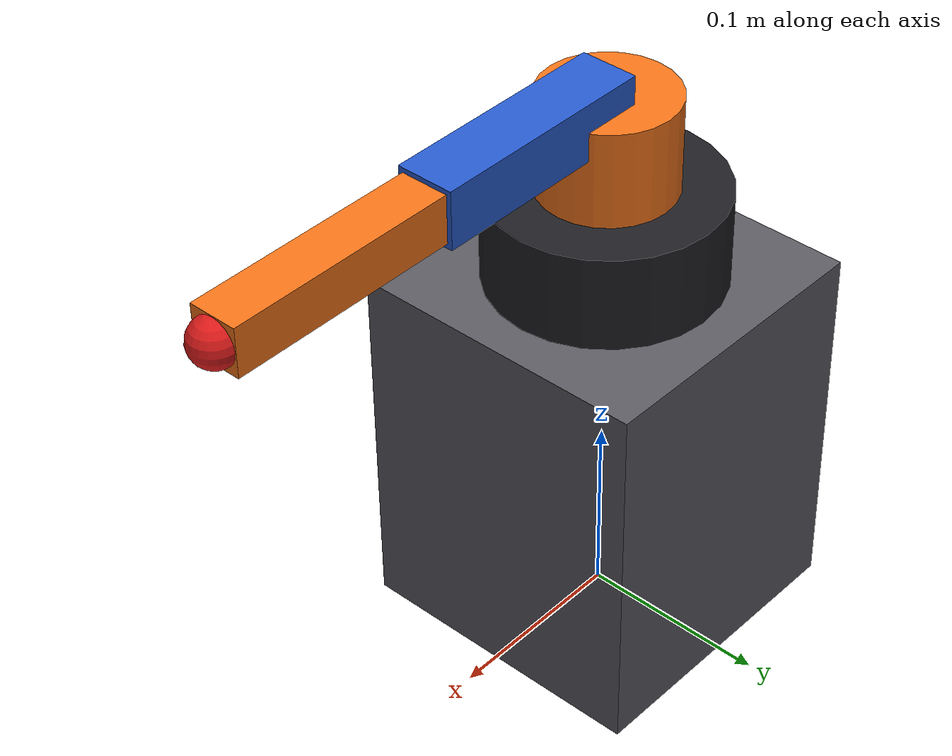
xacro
<?xml version="1.0"?>
<robot name="arm3" xmlns:xacro="http://www.ros.org/wiki/xacro">

  <xacro:arg name="sim_mode" default="gazebo"/>
  <xacro:arg name="control_mode" default="position"/>
  <xacro:property name="sim_mode" value="$(arg sim_mode)"/>
  <xacro:property name="control_mode" value="$(arg control_mode)"/>

  <!-- ===== Геометрические параметры (м) — те же, что в mum_labs/arm3_kinematics.py ===== -->
  <xacro:property name="PI" value="3.141592653589793"/>
  <xacro:property name="H_PED" value="0.20"/>   <!-- высота подставки -->
  <xacro:property name="H_BASE" value="0.05"/>  <!-- высота корпуса основания (до оси q1) -->
  <xacro:property name="H_COL" value="0.05"/>   <!-- высота поворотной колонны (до оси q2) -->
  <xacro:property name="A2" value="0.12"/>      <!-- длина плеча -->
  <xacro:property name="A3" value="0.12"/>      <!-- длина предплечья -->
  <!-- D1 = H_BASE + H_COL = 0.10 м -->

  <!-- ===== Массы (кг) ===== -->
  <xacro:property name="M_BASE" value="0.50"/>
  <xacro:property name="M_L1" value="0.10"/>
  <xacro:property name="M_L2" value="0.12"/>
  <xacro:property name="M_L3" value="0.08"/>

  <!-- ===== Ограничения сервоприводов ===== -->
  <xacro:property name="EFFORT" value="1.5"/>
  <xacro:property name="VEL" value="3.0"/>      <!-- рад/с -->
  <xacro:property name="DAMP" value="0.05"/>    <!-- вязкое трение в редукторе сервопривода, Н·м·с/рад -->

  <!-- ===== Материалы ===== -->
  <material name="grey"><color rgba="0.35 0.35 0.38 1"/></material>
  <material name="dark"><color rgba="0.12 0.12 0.14 1"/></material>
  <material name="orange"><color rgba="0.95 0.45 0.10 1"/></material>
  <material name="blue"><color rgba="0.15 0.35 0.80 1"/></material>
  <material name="red"><color rgba="0.85 0.10 0.10 1"/></material>

  <!-- ===== Макросы инерции ===== -->
  <xacro:macro name="box_inertia" params="m x y z ox oy oz">
    <inertial>
      <origin xyz="${ox} ${oy} ${oz}" rpy="0 0 0"/>
      <mass value="${m}"/>
      <inertia ixx="${m*(y*y+z*z)/12}" ixy="0" ixz="0"
               iyy="${m*(x*x+z*z)/12}" iyz="0"
               izz="${m*(x*x+y*y)/12}"/>
    </inertial>
  </xacro:macro>
  <xacro:macro name="cyl_inertia" params="m r h oz">
    <inertial>
      <origin xyz="0 0 ${oz}" rpy="0 0 0"/>
      <mass value="${m}"/>
      <inertia ixx="${m*(3*r*r+h*h)/12}" ixy="0" ixz="0"
               iyy="${m*(3*r*r+h*h)/12}" iyz="0"
               izz="${m*r*r/2}"/>
    </inertial>
  </xacro:macro>

  <!-- ===== Звенья ===== -->
  <link name="world"/>

  <joint name="world_to_pedestal" type="fixed">
    <parent link="world"/>
    <child link="pedestal"/>
    <origin xyz="0 0 0" rpy="0 0 0"/>
  </joint>

  <link name="pedestal">
    <visual>
      <origin xyz="0 0 ${H_PED/2}"/>
      <geometry><box size="0.16 0.16 ${H_PED}"/></geometry>
      <material name="grey"/>
    </visual>
    <collision>
      <origin xyz="0 0 ${H_PED/2}"/>
      <geometry><box size="0.16 0.16 ${H_PED}"/></geometry>
    </collision>
    <xacro:box_inertia m="2.0" x="0.16" y="0.16" z="${H_PED}" ox="0" oy="0" oz="${H_PED/2}"/>
  </link>

  <joint name="pedestal_to_base" type="fixed">
    <parent link="pedestal"/>
    <child link="base_link"/>
    <origin xyz="0 0 ${H_PED}" rpy="0 0 0"/>
  </joint>

  <!-- base_link = система координат 0 (ось z0 — ось первого сервопривода) -->
  <link name="base_link">
    <visual>
      <origin xyz="0 0 ${H_BASE/2}"/>
      <geometry><cylinder radius="0.06" length="${H_BASE}"/></geometry>
      <material name="dark"/>
    </visual>
    <collision>
      <origin xyz="0 0 ${H_BASE/2}"/>
      <geometry><cylinder radius="0.06" length="${H_BASE}"/></geometry>
    </collision>
    <xacro:cyl_inertia m="${M_BASE}" r="0.06" h="${H_BASE}" oz="${H_BASE/2}"/>
  </link>

  <!-- Сервопривод 1: поворот вокруг z0 -->
  <joint name="joint1" type="revolute">
    <parent link="base_link"/>
    <child link="link1"/>
    <origin xyz="0 0 ${H_BASE}" rpy="0 0 0"/>
    <axis xyz="0 0 1"/>
    <limit lower="${-PI/2}" upper="${PI/2}" effort="${EFFORT}" velocity="${VEL}"/>
    <dynamics damping="${DAMP}" friction="0.0"/>
  </joint>

  <link name="link1">
    <visual>
      <origin xyz="0 0 ${H_COL/2}"/>
      <geometry><cylinder radius="0.035" length="${H_COL}"/></geometry>
      <material name="orange"/>
    </visual>
    <collision>
      <origin xyz="0 0 ${H_COL/2}"/>
      <geometry><cylinder radius="0.035" length="${H_COL}"/></geometry>
    </collision>
    <xacro:cyl_inertia m="${M_L1}" r="0.035" h="${H_COL}" oz="${H_COL/2}"/>
  </link>

  <!-- Сервопривод 2: плечо. Ось (0,-1,0): положительный угол поднимает звено вверх
       (так ось совпадает с осью z1 таблицы ДХ при alpha1 = +pi/2). -->
  <joint name="joint2" type="revolute">
    <parent link="link1"/>
    <child link="link2"/>
    <origin xyz="0 0 ${H_COL}" rpy="0 0 0"/>
    <axis xyz="0 -1 0"/>
    <limit lower="-0.3" upper="2.8" effort="${EFFORT}" velocity="${VEL}"/>
    <dynamics damping="${DAMP}" friction="0.0"/>
  </joint>

  <link name="link2">
    <visual>
      <origin xyz="${A2/2} 0 0"/>
      <geometry><box size="${A2} 0.03 0.03"/></geometry>
      <material name="blue"/>
    </visual>
    <collision>
      <origin xyz="${A2/2} 0 0"/>
      <geometry><box size="${A2} 0.03 0.03"/></geometry>
    </collision>
    <xacro:box_inertia m="${M_L2}" x="${A2}" y="0.03" z="0.03" ox="${A2/2}" oy="0" oz="0"/>
  </link>

  <!-- Сервопривод 3: локоть -->
  <joint name="joint3" type="revolute">
    <parent link="link2"/>
    <child link="link3"/>
    <origin xyz="${A2} 0 0" rpy="0 0 0"/>
    <axis xyz="0 -1 0"/>
    <limit lower="-2.5" upper="2.5" effort="${EFFORT}" velocity="${VEL}"/>
    <dynamics damping="${DAMP}" friction="0.0"/>
  </joint>

  <link name="link3">
    <visual>
      <origin xyz="${A3/2} 0 0"/>
      <geometry><box size="${A3} 0.025 0.025"/></geometry>
      <material name="orange"/>
    </visual>
    <collision>
      <origin xyz="${A3/2} 0 0"/>
      <geometry><box size="${A3} 0.025 0.025"/></geometry>
    </collision>
    <xacro:box_inertia m="${M_L3}" x="${A3}" y="0.025" z="0.025" ox="${A3/2}" oy="0" oz="0"/>
  </link>

  <!-- Рабочая точка (схват) -->
  <joint name="tool_joint" type="fixed">
    <parent link="link3"/>
    <child link="tool0"/>
    <origin xyz="${A3} 0 0" rpy="0 0 0"/>
  </joint>

  <link name="tool0">
    <visual>
      <geometry><sphere radius="0.012"/></geometry>
      <material name="red"/>
    </visual>
    <inertial>
      <mass value="0.005"/>
      <inertia ixx="1e-7" ixy="0" ixz="0" iyy="1e-7" iyz="0" izz="1e-7"/>
    </inertial>
  </link>

  <!-- ===== ros2_control ===== -->
  <xacro:macro name="arm_joint_if" params="name init">
    <joint name="${name}">
      <xacro:if value="${control_mode == 'position'}">
        <command_interface name="position"/>
      </xacro:if>
      <xacro:unless value="${control_mode == 'position'}">
        <command_interface name="effort">
          <param name="min">${-EFFORT}</param>
          <param name="max">${EFFORT}</param>
        </command_interface>
      </xacro:unless>
      <state_interface name="position">
        <param name="initial_value">${init}</param>
      </state_interface>
      <state_interface name="velocity"/>
      <state_interface name="effort"/>
    </joint>
  </xacro:macro>

  <ros2_control name="arm3_system" type="system">
    <hardware>
      <xacro:if value="${sim_mode == 'gazebo'}">
        <plugin>gz_ros2_control/GazeboSimSystem</plugin>
      </xacro:if>
      <xacro:if value="${sim_mode == 'mock'}">
        <plugin>mock_components/GenericSystem</plugin>
      </xacro:if>
    </hardware>
    <xacro:arm_joint_if name="joint1" init="0.0"/>
    <xacro:arm_joint_if name="joint2" init="0.0"/>
    <xacro:arm_joint_if name="joint3" init="0.0"/>
  </ros2_control>

  <xacro:if value="${sim_mode == 'gazebo'}">
    <gazebo>
      <plugin filename="gz_ros2_control-system" name="gz_ros2_control::GazeboSimROS2ControlPlugin">
        <xacro:if value="${control_mode == 'position'}">
          <parameters>$(find arm3_description)/config/arm3_controllers.yaml</parameters>
        </xacro:if>
        <xacro:if value="${control_mode == 'effort'}">
          <parameters>$(find arm3_description)/config/arm3_effort_controllers.yaml</parameters>
        </xacro:if>
        <xacro:if value="${control_mode == 'effort_jtc'}">
          <parameters>$(find arm3_description)/config/arm3_effort_jtc_controllers.yaml</parameters>
        </xacro:if>
      </plugin>
    </gazebo>

    <gazebo reference="pedestal"><visual><material><diffuse>0.35 0.35 0.38 1</diffuse><ambient>0.35 0.35 0.38 1</ambient></material></visual></gazebo>
    <gazebo reference="base_link"><visual><material><diffuse>0.12 0.12 0.14 1</diffuse><ambient>0.12 0.12 0.14 1</ambient></material></visual></gazebo>
    <gazebo reference="link1"><visual><material><diffuse>0.95 0.45 0.10 1</diffuse><ambient>0.95 0.45 0.10 1</ambient></material></visual></gazebo>
    <gazebo reference="link2"><visual><material><diffuse>0.15 0.35 0.80 1</diffuse><ambient>0.15 0.35 0.80 1</ambient></material></visual></gazebo>
    <gazebo reference="link3"><visual><material><diffuse>0.95 0.45 0.10 1</diffuse><ambient>0.95 0.45 0.10 1</ambient></material></visual></gazebo>
    <gazebo reference="tool0"><visual><material><diffuse>0.85 0.10 0.10 1</diffuse><ambient>0.85 0.10 0.10 1</ambient></material></visual></gazebo>
  </xacro:if>

</robot>
